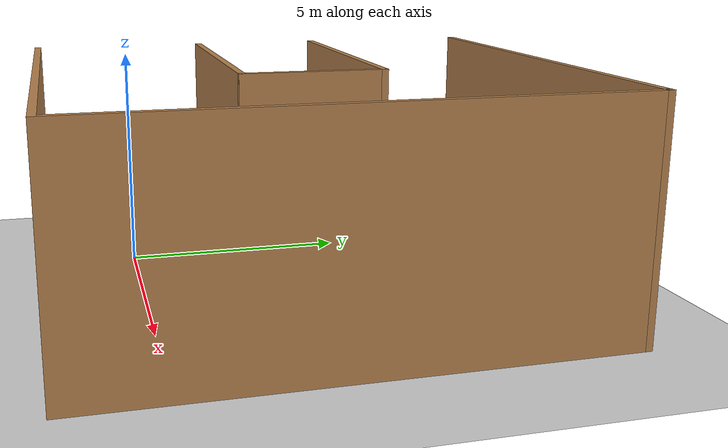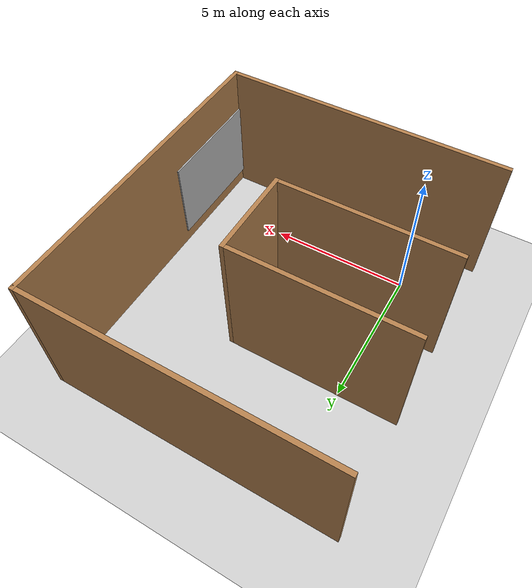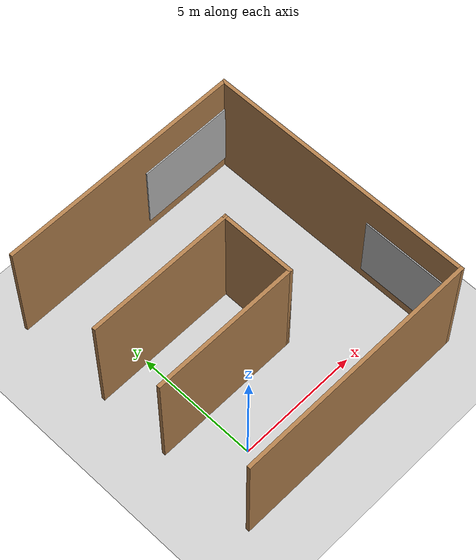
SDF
<sdf version="1.6">
 <world name="default">
  <scene><ambient>1 1 1 1</ambient><shadows>0</shadows><background>0.7 0.7 0.7 1</background></scene>
  <light name="sun" type="directional">
   <pose>0 0 10 0 -0 0</pose>
   <diffuse>0.8 0.8 0.8 1</diffuse>
   <specular>0.2 0.2 0.2 1</specular>
   <attenuation>
    <range>1000</range>
    <constant>0.9</constant>
    <linear>0.01</linear>
    <quadratic>0.001</quadratic>
   </attenuation>
   <direction>-0.5 0.1 -0.9</direction>
  </light>
  <model name="ground_plane">
   <static>1</static>
   <link name="link">
    <collision name="collision">
     <geometry><plane><normal>0 0 1</normal><size>100 100</size></plane></geometry>
     <surface>
      <contact><collide_bitmask>65535</collide_bitmask></contact>
      <friction><ode><mu>100</mu><mu2>50</mu2></ode></friction>
     </surface>
    </collision>
    <visual name="visual">
     <cast_shadows>0</cast_shadows>
     <geometry><plane><normal>0 0 1</normal><size>100 100</size></plane></geometry>
     <material>
      <script><uri>file://media/materials/scripts/gazebo.material</uri><name>Gazebo/Grey</name></script>
     </material>
    </visual>
   </link>
  </model>
  <gravity>0 0 -9.8</gravity>
  <magnetic_field>6e-06 2.3e-05 -4.2e-05</magnetic_field>
  <atmosphere type="adiabatic"/>
  <physics name="default_physics" default="0" type="ode">
   <max_step_size>0.001</max_step_size>
   <real_time_factor>1</real_time_factor>
   <real_time_update_rate>1000</real_time_update_rate>
  </physics>
  <scene><ambient>0.4 0.4 0.4 1</ambient><background>0.7 0.7 0.7 1</background><shadows>1</shadows></scene>
  <audio><device>default</device></audio>
  <spherical_coordinates>
   <surface_model>EARTH_WGS84</surface_model>
   <latitude_deg>0</latitude_deg>
   <longitude_deg>0</longitude_deg>
   <elevation>0</elevation>
   <heading_deg>0</heading_deg>
  </spherical_coordinates>
  <model name="simple_lab">
   <pose>3 3.5 0 0 -0 0</pose>
   <link name="Wall_12">
    <collision name="Wall_12_Collision">
     <geometry><box><size>10.15 0.15 5</size></box></geometry>
     <pose>0 0 2.5 0 -0 0</pose>
    </collision>
    <visual name="Wall_12_Visual">
     <pose>0 0 2.5 0 -0 0</pose>
     <geometry><box><size>10.15 0.15 5</size></box></geometry>
     <material>
      <script><uri>file://media/materials/scripts/gazebo.material</uri><name>Gazebo/Wood</name></script>
      <ambient>1 1 1 1</ambient>
     </material>
     <meta><layer>0</layer></meta>
    </visual>
    <pose>-0 -5.5 0 0 -0 0</pose>
   </link>
   <link name="Wall_16">
    <collision name="Wall_16_Collision">
     <geometry><box><size>6.15 0.15 5</size></box></geometry>
     <pose>0 0 2.5 0 -0 0</pose>
    </collision>
    <visual name="Wall_16_Visual">
     <pose>0 0 2.5 0 -0 0</pose>
     <geometry><box><size>6.15 0.15 5</size></box></geometry>
     <material>
      <script><uri>file://media/materials/scripts/gazebo.material</uri><name>Gazebo/Wood</name></script>
      <ambient>1 1 1 1</ambient>
     </material>
     <meta><layer>0</layer></meta>
    </visual>
    <pose>-2 -1.5 0 0 -0 0</pose>
   </link>
   <link name="Wall_18">
    <collision name="Wall_18_Collision">
     <geometry><box><size>11.1503 0.15 5</size></box></geometry>
     <pose>0 0 2.5 0 -0 0</pose>
    </collision>
    <visual name="Wall_18_Visual">
     <pose>0 0 2.5 0 -0 0</pose>
     <geometry><box><size>11.1503 0.15 5</size></box></geometry>
     <material>
      <script><uri>file://media/materials/scripts/gazebo.material</uri><name>Gazebo/Wood</name></script>
      <ambient>1 1 1 1</ambient>
     </material>
     <meta><layer>0</layer></meta>
    </visual>
    <pose>5 0 0 0 -0 1.5708</pose>
   </link>
   <link name="Wall_20">
    <collision name="Wall_20_Collision">
     <geometry><box><size>3.15 0.15 5</size></box></geometry>
     <pose>0 0 2.5 0 -0 0</pose>
    </collision>
    <visual name="Wall_20_Visual">
     <pose>0 0 2.5 0 -0 0</pose>
     <geometry><box><size>3.15 0.15 5</size></box></geometry>
     <material>
      <script><uri>file://media/materials/scripts/gazebo.material</uri><name>Gazebo/Wood</name></script>
      <ambient>1 1 1 1</ambient>
     </material>
     <meta><layer>0</layer></meta>
    </visual>
    <pose>1 0 0 0 -0 1.5708</pose>
   </link>
   <link name="Wall_22">
    <collision name="Wall_22_Collision">
     <geometry><box><size>6.15 0.15 5</size></box></geometry>
     <pose>0 0 2.5 0 -0 0</pose>
    </collision>
    <visual name="Wall_22_Visual">
     <pose>0 0 2.5 0 -0 0</pose>
     <geometry><box><size>6.15 0.15 5</size></box></geometry>
     <material>
      <script><uri>file://media/materials/scripts/gazebo.material</uri><name>Gazebo/Wood</name></script>
      <ambient>1 1 1 1</ambient>
     </material>
     <meta><layer>0</layer></meta>
    </visual>
    <pose>-2 1.5 0 0 -0 3.14159</pose>
   </link>
   <link name="Wall_24">
    <collision name="Wall_24_Collision">
     <geometry><box><size>10.15 0.15 5</size></box></geometry>
     <pose>0 0 2.5 0 -0 0</pose>
    </collision>
    <visual name="Wall_24_Visual">
     <pose>0 0 2.5 0 -0 0</pose>
     <geometry><box><size>10.15 0.15 5</size></box></geometry>
     <material>
      <script><uri>file://media/materials/scripts/gazebo.material</uri><name>Gazebo/Wood</name></script>
      <ambient>1 1 1 1</ambient>
     </material>
     <meta><layer>0</layer></meta>
    </visual>
    <pose>-0 5.5 0 0 -0 3.14159</pose>
   </link>
   <static>1</static>
  </model>
  <light name="user_directional_light_0" type="directional">
   <pose>-4.86218 0.981089 1 0 -0 0</pose>
   <diffuse>0.5 0.5 0.5 1</diffuse>
   <specular>0.1 0.1 0.1 1</specular>
   <direction>0.1 0.1 -0.9</direction>
   <attenuation>
    <range>20</range>
    <constant>0.5</constant>
    <linear>0.01</linear>
    <quadratic>0.001</quadratic>
   </attenuation>
  </light>
  <model name="textured_shapes_0">
   <static>1</static>
   <pose>7.9 0 2 0 -0 1.5708</pose>
   <link name="box">
    <collision name="collision"><geometry><box><size>4 0.05 3</size></box></geometry></collision>
    <visual name="visual">
     <geometry><box><size>4 0.05 3</size></box></geometry>
     <material>
      <script>
       <uri>model://texture_model/materials/scripts</uri>
       <uri>model://texture_model/materials/textures</uri>
       <name>TexturedShape/Squares</name>
      </script>
     </material>
    </visual>
   </link>
  </model>
  <model name="textured_shapes_0_clone">
   <static>1</static>
   <pose>6 8.9 2 0 -0 0</pose>
   <link name="box">
    <collision name="collision"><geometry><box><size>4 0.05 3</size></box></geometry></collision>
    <visual name="visual">
     <geometry><box><size>4 0.05 3</size></box></geometry>
     <material>
      <script>
       <uri>model://texture_model/materials/scripts</uri>
       <uri>model://texture_model/materials/textures</uri>
       <name>TexturedShape/Squares</name>
      </script>
     </material>
    </visual>
   </link>
  </model>
 </world>
</sdf>
